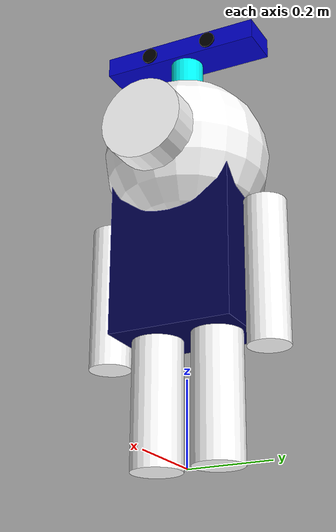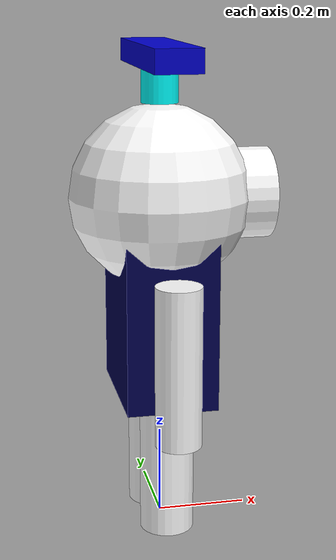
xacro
<?xml version="1.0"?>
<robot name="cnuchacha" xmlns:xacro="http://www.ros.org/wiki/xacro">
  <xacro:arg name="prefix" default="" />

  <!-- Import cnuchacha macro -->
  <xacro:include filename="$(find cnuchacha_description)/urdf/cnuchacha_description.urdf.xacro" />

  <!-- Import ros2_control description -->
  <xacro:include filename="$(find cnuchacha_launcher)/urdf/cnuchacha_ros2_control.xacro" />
  <xacro:cnuchacha_ros2_control name="CNUChacha" prefix="$(arg prefix)" />

  <!-- Import Gazebo Classic definitions + plugin -->
  <xacro:include filename="$(find cnuchacha_launcher)/urdf/cnuchacha_gazebo.xacro" />
  <xacro:cnuchacha_gazebo prefix="$(arg prefix)"/>

</robot>

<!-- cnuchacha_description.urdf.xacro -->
<robot name="cnuchacha" xmlns:xacro="http://www.ros.org/wiki/xacro">
  <xacro:arg name="prefix" default="" />

  <!-- Import materials (colors) -->
  <xacro:include filename="$(find cnuchacha_description)/urdf/cnuchacha_materials.xacro" />

  <!-- Import cnuchacha macro -->
  <xacro:include filename="$(find cnuchacha_description)/urdf/cnuchacha_macro.xacro" />

  <!-- Used for fixing robot -->
  <link name="world"/>

  <xacro:cnuchacha parent="world" prefix="$(arg prefix)">
    <origin xyz="0 0 0" rpy="0 0 0" />
  </xacro:cnuchacha>

</robot>

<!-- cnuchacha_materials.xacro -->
<!--
Copied from ROS1 example -
https://github.com/ros-simulation/gazebo_ros_demos/blob/kinetic-devel/rrbot_description/urdf/materials.xacro
-->
<robot>
  <material name="black">
    <color rgba="0.0 0.0 0.0 1.0"/>
  </material>

  <material name="blue">
    <color rgba="0.0 0.0 0.8 1.0"/>
  </material>

  <material name="green">
    <color rgba="0.0 0.8 0.0 1.0"/>
  </material>

  <material name="grey">
    <color rgba="0.2 0.2 0.2 1.0"/>
  </material>

  <material name="orange">
    <color rgba="${255/255} ${108/255} ${10/255} 1.0"/>
  </material>

  <material name="brown">
    <color rgba="${222/255} ${207/255} ${195/255} 1.0"/>
  </material>

  <material name="red">
    <color rgba="0.8 0.0 0.0 1.0"/>
  </material>

  <material name="yellow">
    <color rgba="1.0 1.0 0.0 1.0"/>
  </material>

  <material name="white">
    <color rgba="1.0 1.0 1.0 1.0"/>
  </material>

  <material name="navy">
    <color rgba="0.0 0.0 0.3 1.0"/>
  </material>

  <material name="cyan">
    <color rgba="0.0 1.0 1.0 1.0"/>
  </material>
</robot>

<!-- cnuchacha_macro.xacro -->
<robot xmlns:xacro="http://www.ros.org/wiki/xacro">

  <xacro:macro name="cnuchacha" params="parent prefix *origin">
    <!-- Constants for Chacha & Nupjuki dimensions -->
    <xacro:property name="mass" value="1.0" />
    <xacro:property name="body_w" value="0.3" />
    <xacro:property name="body_d" value="0.2" />
    <xacro:property name="body_h" value="0.4" />
    <xacro:property name="leg_r" value="0.06" />
    <xacro:property name="leg_l" value="0.3" />
    <xacro:property name="arm_r" value="0.05" />
    <xacro:property name="arm_l" value="0.35" />
    <xacro:property name="head_r" value="0.2" />

    <joint name="${prefix}base_joint" type="fixed">
      <xacro:insert_block name="origin" />
      <parent link="${parent}"/>
      <child link="${prefix}base_link" />
    </joint>

    <!-- Base Link (Torso / Chacha's Navy Body) -->
    <link name="${prefix}base_link">
      <visual>
        <origin xyz="0 0 ${body_h/2 + leg_l}" rpy="0 0 0"/>
        <geometry><box size="${body_d} ${body_w} ${body_h}"/></geometry>
        <material name="navy"/>
      </visual>
      <collision>
        <origin xyz="0 0 ${body_h/2 + leg_l}" rpy="0 0 0"/>
        <geometry><box size="${body_d} ${body_w} ${body_h}"/></geometry>
      </collision>
      <inertial>
        <origin xyz="0 0 ${body_h/2 + leg_l}" rpy="0 0 0"/>
        <mass value="${mass * 5}"/>
        <inertia ixx="0.1" ixy="0.0" ixz="0.0" iyy="0.1" iyz="0.0" izz="0.1"/>
      </inertial>
    </link>

    <!-- Chacha Head -->
    <joint name="${prefix}head_joint" type="fixed">
      <parent link="${prefix}base_link"/>
      <child link="${prefix}head_link"/>
      <origin xyz="0 0 ${leg_l + body_h + 0.05}" rpy="0 0 0"/>
    </joint>
    <link name="${prefix}head_link">
      <visual>
        <origin xyz="0 0 0" rpy="0 0 0"/>
        <geometry><sphere radius="${head_r}"/></geometry>
        <material name="white"/>
      </visual>
      <visual> <!-- Snout -->
        <origin xyz="${head_r*0.7} 0 0" rpy="0 ${pi/2} 0"/>
        <geometry><cylinder radius="0.1" length="0.2"/></geometry>
        <material name="white"/>
      </visual>
      <collision>
        <origin xyz="0 0 0" rpy="0 0 0"/>
        <geometry><sphere radius="${head_r}"/></geometry>
      </collision>
      <inertial>
        <origin xyz="0 0 0" rpy="0 0 0"/>
        <mass value="${mass}"/>
        <inertia ixx="0.01" ixy="0.0" ixz="0.0" iyy="0.01" iyz="0.0" izz="0.01"/>
      </inertial>
    </link>

    <!-- Legs -->
    <joint name="${prefix}left_leg_joint" type="fixed">
      <parent link="${prefix}base_link"/>
      <child link="${prefix}left_leg"/>
      <origin xyz="0 ${body_w/4} ${leg_l}" rpy="0 0 0"/>
    </joint>
    <link name="${prefix}left_leg">
      <visual>
        <origin xyz="0 0 ${-leg_l/2}" rpy="0 0 0"/>
        <geometry><cylinder radius="${leg_r}" length="${leg_l}"/></geometry>
        <material name="white"/>
      </visual>
      <collision>
        <origin xyz="0 0 ${-leg_l/2}" rpy="0 0 0"/>
        <geometry><cylinder radius="${leg_r}" length="${leg_l}"/></geometry>
      </collision>
      <inertial>
        <origin xyz="0 0 ${-leg_l/2}" rpy="0 0 0"/>
        <mass value="${mass}"/>
        <inertia ixx="0.01" ixy="0.0" ixz="0.0" iyy="0.01" iyz="0.0" izz="0.01"/>
      </inertial>
    </link>

    <joint name="${prefix}right_leg_joint" type="fixed">
      <parent link="${prefix}base_link"/>
      <child link="${prefix}right_leg"/>
      <origin xyz="0 ${-body_w/4} ${leg_l}" rpy="0 0 0"/>
    </joint>
    <link name="${prefix}right_leg">
      <visual>
        <origin xyz="0 0 ${-leg_l/2}" rpy="0 0 0"/>
        <geometry><cylinder radius="${leg_r}" length="${leg_l}"/></geometry>
        <material name="white"/>
      </visual>
      <collision>
        <origin xyz="0 0 ${-leg_l/2}" rpy="0 0 0"/>
        <geometry><cylinder radius="${leg_r}" length="${leg_l}"/></geometry>
      </collision>
      <inertial>
        <origin xyz="0 0 ${-leg_l/2}" rpy="0 0 0"/>
        <mass value="${mass}"/>
        <inertia ixx="0.01" ixy="0.0" ixz="0.0" iyy="0.01" iyz="0.0" izz="0.01"/>
      </inertial>
    </link>

    <!-- Arms (joint1 and joint2 for backward compatibility with controllers) -->
    <!-- Left Arm -->
    <joint name="${prefix}joint1" type="revolute">
      <parent link="${prefix}base_link"/>
      <child link="${prefix}left_arm"/>
      <origin xyz="0 ${body_w/2 + arm_r} ${leg_l + body_h - arm_r*2}" rpy="0 0 0"/>
      <axis xyz="0 1 0"/>
      <dynamics damping="0.7"/>
      <limit effort="100" velocity="1.0" lower="-1.57" upper="1.57"/>
    </joint>
    <link name="${prefix}left_arm">
      <visual>
        <origin xyz="0 0 ${-arm_l/2}" rpy="0 0 0"/>
        <geometry><cylinder radius="${arm_r}" length="${arm_l}"/></geometry>
        <material name="white"/>
      </visual>
      <collision>
        <origin xyz="0 0 ${-arm_l/2}" rpy="0 0 0"/>
        <geometry><cylinder radius="${arm_r}" length="${arm_l}"/></geometry>
      </collision>
      <inertial>
        <origin xyz="0 0 ${-arm_l/2}" rpy="0 0 0"/>
        <mass value="${mass}"/>
        <inertia ixx="0.01" ixy="0.0" ixz="0.0" iyy="0.01" iyz="0.0" izz="0.01"/>
      </inertial>
    </link>

    <!-- Right Arm -->
    <joint name="${prefix}joint2" type="revolute">
      <parent link="${prefix}base_link"/>
      <child link="${prefix}right_arm"/>
      <origin xyz="0 ${-body_w/2 - arm_r} ${leg_l + body_h - arm_r*2}" rpy="0 0 0"/>
      <axis xyz="0 1 0"/>
      <dynamics damping="0.7"/>
      <limit effort="100" velocity="1.0" lower="-1.57" upper="1.57"/>
    </joint>
    <link name="${prefix}right_arm">
      <visual>
        <origin xyz="0 0 ${-arm_l/2}" rpy="0 0 0"/>
        <geometry><cylinder radius="${arm_r}" length="${arm_l}"/></geometry>
        <material name="white"/>
      </visual>
      <collision>
        <origin xyz="0 0 ${-arm_l/2}" rpy="0 0 0"/>
        <geometry><cylinder radius="${arm_r}" length="${arm_l}"/></geometry>
      </collision>
      <inertial>
        <origin xyz="0 0 ${-arm_l/2}" rpy="0 0 0"/>
        <mass value="${mass}"/>
        <inertia ixx="0.01" ixy="0.0" ixz="0.0" iyy="0.01" iyz="0.0" izz="0.01"/>
      </inertial>
    </link>

    <!-- Nupjuki (KAIST Mascot on Hat) -->
    <joint name="${prefix}nupjuki_joint" type="fixed">
      <parent link="${prefix}head_link"/>
      <child link="${prefix}nupjuki_link"/>
      <origin xyz="0 0 ${head_r}" rpy="0 0 0"/>
    </joint>
    <link name="${prefix}nupjuki_link">
      <!-- Nupjuki Body -->
      <visual>
        <origin xyz="0 0 0.05" rpy="0 0 0"/>
        <geometry><cylinder radius="0.04" length="0.1"/></geometry>
        <material name="cyan"/>
      </visual>
      <!-- Nupjuki Flat Head -->
      <visual>
        <origin xyz="0 0 0.1" rpy="0 0 0"/>
        <geometry><box size="0.1 0.4 0.05"/></geometry>
        <material name="blue"/>
      </visual>
      <!-- Left Eye -->
      <visual>
        <origin xyz="0.05 0.08 0.1" rpy="0 ${pi/2} 0"/>
        <geometry><cylinder radius="0.02" length="0.01"/></geometry>
        <material name="black"/>
      </visual>
      <!-- Right Eye -->
      <visual>
        <origin xyz="0.05 -0.08 0.1" rpy="0 ${pi/2} 0"/>
        <geometry><cylinder radius="0.02" length="0.01"/></geometry>
        <material name="black"/>
      </visual>
      <collision>
        <origin xyz="0 0 0.1" rpy="0 0 0"/>
        <geometry><box size="0.1 0.4 0.05"/></geometry>
      </collision>
      <inertial>
        <origin xyz="0 0 0.1" rpy="0 0 0"/>
        <mass value="0.1"/>
        <inertia ixx="0.001" ixy="0.0" ixz="0.0" iyy="0.001" iyz="0.0" izz="0.001"/>
      </inertial>
    </link>

  </xacro:macro>

</robot>
